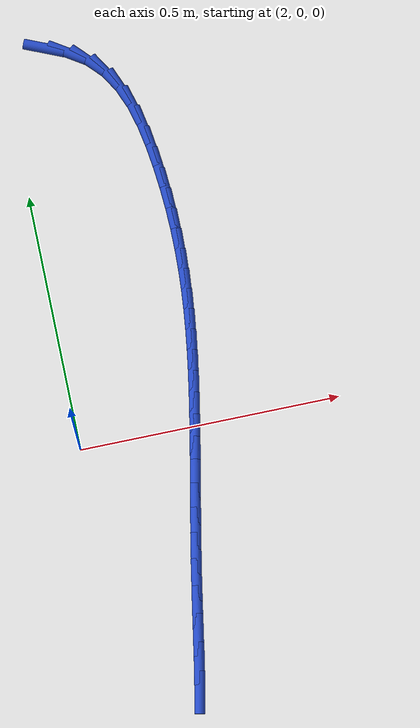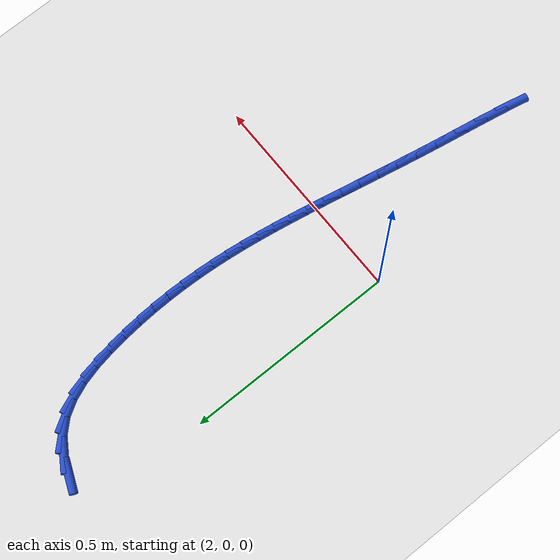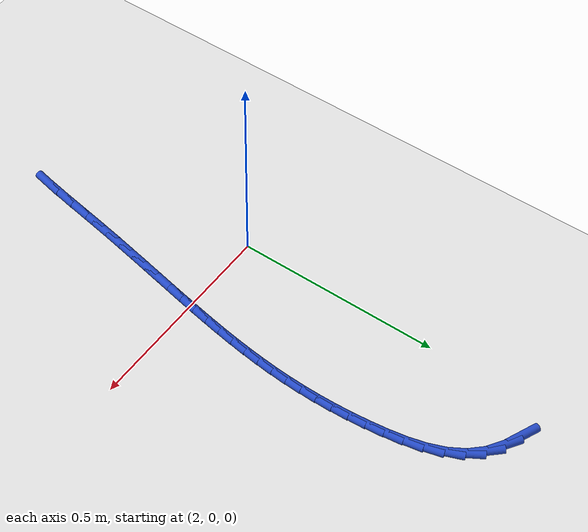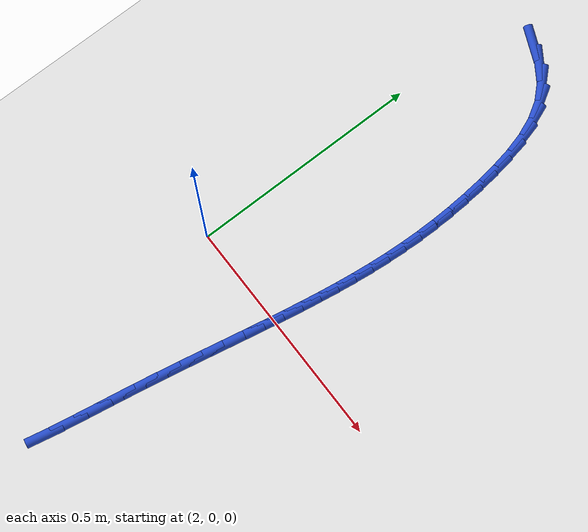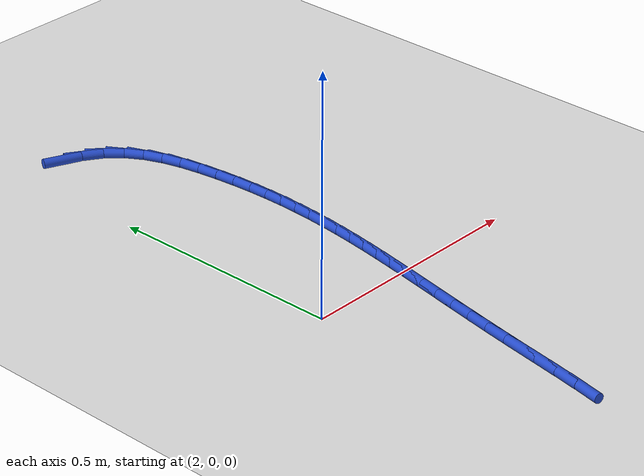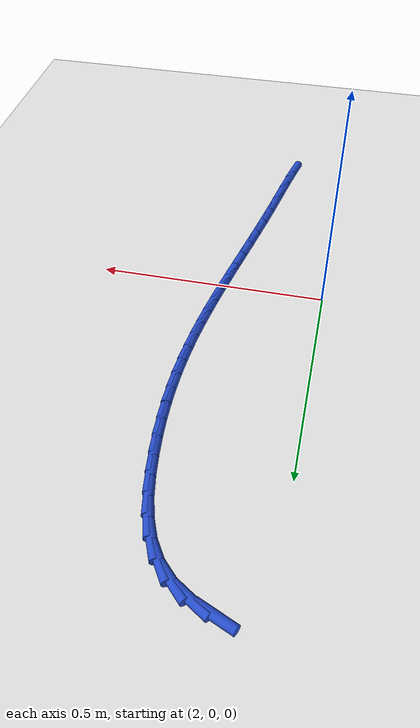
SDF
<sdf version="1.6">
 <world name="default">
  <model name="ground_plane">
   <static>1</static>
   <link name="link">
    <collision name="collision">
     <geometry><plane><normal>0 0 1</normal><size>100 100</size></plane></geometry>
     <surface><friction><ode><mu>100</mu><mu2>50</mu2></ode></friction></surface>
    </collision>
    <visual name="visual">
     <cast_shadows>0</cast_shadows>
     <geometry><plane><normal>0 0 1</normal><size>100 100</size></plane></geometry>
     <material>
      <script><uri>file://media/materials/scripts/gazebo.material</uri><name>Gazebo/WhiteGlow</name></script>
     </material>
    </visual>
   </link>
  </model>
  <model name="line">
   <link name="link_81">
    <pose>2.0859889383725916 0.7826490027034786 0.01 0 1.57 -0.40708424234307306</pose>
    <collision name="collision">
     <geometry><cylinder><radius>0.01</radius><length>0.08</length></cylinder></geometry>
    </collision>
    <visual name="visual">
     <material>
      <script><name>Gazebo/Blue</name><uri>file://media/materials/scripts/gazebo.material</uri></script>
     </material>
     <geometry><cylinder><radius>0.01</radius><length>0.08</length></cylinder></geometry>
    </visual>
   </link>
   <link name="link_82">
    <pose>2.1278544804068167 0.7645978777397595 0.01 0 1.57 -0.5768777004514546</pose>
    <collision name="collision">
     <geometry><cylinder><radius>0.01</radius><length>0.08</length></cylinder></geometry>
    </collision>
    <visual name="visual">
     <material>
      <script><name>Gazebo/Blue</name><uri>file://media/materials/scripts/gazebo.material</uri></script>
     </material>
     <geometry><cylinder><radius>0.01</radius><length>0.08</length></cylinder></geometry>
    </visual>
   </link>
   <link name="link_83">
    <pose>2.1639312271323092 0.7411221970904887 0.01 0 1.57 -0.8098221811694225</pose>
    <collision name="collision">
     <geometry><cylinder><radius>0.01</radius><length>0.08</length></cylinder></geometry>
    </collision>
    <visual name="visual">
     <material>
      <script><name>Gazebo/Blue</name><uri>file://media/materials/scripts/gazebo.material</uri></script>
     </material>
     <geometry><cylinder><radius>0.01</radius><length>0.08</length></cylinder></geometry>
    </visual>
   </link>
   <link name="link_84">
    <pose>2.1925728538445797 0.7110461639763306 0.01 0 1.57 -1.0259885748505464</pose>
    <collision name="collision">
     <geometry><cylinder><radius>0.01</radius><length>0.08</length></cylinder></geometry>
    </collision>
    <visual name="visual">
     <material>
      <script><name>Gazebo/Blue</name><uri>file://media/materials/scripts/gazebo.material</uri></script>
     </material>
     <geometry><cylinder><radius>0.01</radius><length>0.08</length></cylinder></geometry>
    </visual>
   </link>
   <link name="link_85">
    <pose>2.2142740364322346 0.6752346752491429 0.01 0 1.57 -1.1923110346708692</pose>
    <collision name="collision">
     <geometry><cylinder><radius>0.01</radius><length>0.08</length></cylinder></geometry>
    </collision>
    <visual name="visual">
     <material>
      <script><name>Gazebo/Blue</name><uri>file://media/materials/scripts/gazebo.material</uri></script>
     </material>
     <geometry><cylinder><radius>0.01</radius><length>0.08</length></cylinder></geometry>
    </visual>
   </link>
   <link name="link_86">
    <pose>2.2301981136859874 0.6351899634673396 0.01 0 1.57 -1.312296114951965</pose>
    <collision name="collision">
     <geometry><cylinder><radius>0.01</radius><length>0.08</length></cylinder></geometry>
    </collision>
    <visual name="visual">
     <material>
      <script><name>Gazebo/Blue</name><uri>file://media/materials/scripts/gazebo.material</uri></script>
     </material>
     <geometry><cylinder><radius>0.01</radius><length>0.08</length></cylinder></geometry>
    </visual>
   </link>
   <link name="link_87">
    <pose>2.2415086483218363 0.5924144746236057 0.01 0 1.57 -1.3940273540027899</pose>
    <collision name="collision">
     <geometry><cylinder><radius>0.01</radius><length>0.08</length></cylinder></geometry>
    </collision>
    <visual name="visual">
     <material>
      <script><name>Gazebo/Blue</name><uri>file://media/materials/scripts/gazebo.material</uri></script>
     </material>
     <geometry><cylinder><radius>0.01</radius><length>0.08</length></cylinder></geometry>
    </visual>
   </link>
   <link name="link_88">
    <pose>2.2493692030557804 0.5484106547106272 0.01 0 1.57 -1.4443224692131036</pose>
    <collision name="collision">
     <geometry><cylinder><radius>0.01</radius><length>0.08</length></cylinder></geometry>
    </collision>
    <visual name="visual">
     <material>
      <script><name>Gazebo/Blue</name><uri>file://media/materials/scripts/gazebo.material</uri></script>
     </material>
     <geometry><cylinder><radius>0.01</radius><length>0.08</length></cylinder></geometry>
    </visual>
   </link>
   <link name="link_89">
    <pose>2.2549318003560996 0.5046632223556308 0.01 0 1.57 -1.478076930266304</pose>
    <collision name="collision">
     <geometry><cylinder><radius>0.01</radius><length>0.08</length></cylinder></geometry>
    </collision>
    <visual name="visual">
     <material>
      <script><name>Gazebo/Blue</name><uri>file://media/materials/scripts/gazebo.material</uri></script>
     </material>
     <geometry><cylinder><radius>0.01</radius><length>0.08</length></cylinder></geometry>
    </visual>
   </link>
   <link name="link_90">
    <pose>2.2589016267244055 0.4619704963202419 0.01 0 1.57 -1.5108912352390813</pose>
    <collision name="collision">
     <geometry><cylinder><radius>0.01</radius><length>0.08</length></cylinder></geometry>
    </collision>
    <visual name="visual">
     <material>
      <script><name>Gazebo/Blue</name><uri>file://media/materials/scripts/gazebo.material</uri></script>
     </material>
     <geometry><cylinder><radius>0.01</radius><length>0.08</length></cylinder></geometry>
    </visual>
   </link>
   <link name="link_91">
    <pose>2.261404447032583 0.42024072617194175 0.01 0 1.57 -1.543359001978309</pose>
    <collision name="collision">
     <geometry><cylinder><radius>0.01</radius><length>0.08</length></cylinder></geometry>
    </collision>
    <visual name="visual">
     <material>
      <script><name>Gazebo/Blue</name><uri>file://media/materials/scripts/gazebo.material</uri></script>
     </material>
     <geometry><cylinder><radius>0.01</radius><length>0.08</length></cylinder></geometry>
    </visual>
   </link>
   <link name="link_92">
    <pose>2.2625274062757694 0.37932283617723606 0.01 0 1.57 1.5665795332024937</pose>
    <collision name="collision">
     <geometry><cylinder><radius>0.01</radius><length>0.08</length></cylinder></geometry>
    </collision>
    <visual name="visual">
     <material>
      <script><name>Gazebo/Blue</name><uri>file://media/materials/scripts/gazebo.material</uri></script>
     </material>
     <geometry><cylinder><radius>0.01</radius><length>0.08</length></cylinder></geometry>
    </visual>
   </link>
   <link name="link_93">
    <pose>2.2623576494491 0.33906575060263044 0.01 0 1.57 1.536208381370331</pose>
    <collision name="collision">
     <geometry><cylinder><radius>0.01</radius><length>0.08</length></cylinder></geometry>
    </collision>
    <visual name="visual">
     <material>
      <script><name>Gazebo/Blue</name><uri>file://media/materials/scripts/gazebo.material</uri></script>
     </material>
     <geometry><cylinder><radius>0.01</radius><length>0.08</length></cylinder></geometry>
    </visual>
   </link>
   <link name="link_94">
    <pose>2.2609823215477127 0.29931839371462915 0.01 0 1.57 1.5075693152358414</pose>
    <collision name="collision">
     <geometry><cylinder><radius>0.01</radius><length>0.08</length></cylinder></geometry>
    </collision>
    <visual name="visual">
     <material>
      <script><name>Gazebo/Blue</name><uri>file://media/materials/scripts/gazebo.material</uri></script>
     </material>
     <geometry><cylinder><radius>0.01</radius><length>0.08</length></cylinder></geometry>
    </visual>
   </link>
   <link name="link_95">
    <pose>2.258488567566743 0.2599296897797379 0.01 0 1.57 1.4810702131340947</pose>
    <collision name="collision">
     <geometry><cylinder><radius>0.01</radius><length>0.08</length></cylinder></geometry>
    </collision>
    <visual name="visual">
     <material>
      <script><name>Gazebo/Blue</name><uri>file://media/materials/scripts/gazebo.material</uri></script>
     </material>
     <geometry><cylinder><radius>0.01</radius><length>0.08</length></cylinder></geometry>
    </visual>
   </link>
   <link name="link_96">
    <pose>2.254963532501328 0.22074856306446175 0.01 0 1.57 1.4570601936032441</pose>
    <collision name="collision">
     <geometry><cylinder><radius>0.01</radius><length>0.08</length></cylinder></geometry>
    </collision>
    <visual name="visual">
     <material>
      <script><name>Gazebo/Blue</name><uri>file://media/materials/scripts/gazebo.material</uri></script>
     </material>
     <geometry><cylinder><radius>0.01</radius><length>0.08</length></cylinder></geometry>
    </visual>
   </link>
   <link name="link_97">
    <pose>2.2504943613466044 0.18162393783530592 0.01 0 1.57 1.4358171203485854</pose>
    <collision name="collision">
     <geometry><cylinder><radius>0.01</radius><length>0.08</length></cylinder></geometry>
    </collision>
    <visual name="visual">
     <material>
      <script><name>Gazebo/Blue</name><uri>file://media/materials/scripts/gazebo.material</uri></script>
     </material>
     <geometry><cylinder><radius>0.01</radius><length>0.08</length></cylinder></geometry>
    </visual>
   </link>
   <link name="link_98">
    <pose>2.2451681990977073 0.1424047383587764 0.01 0 1.57 1.4175407754076912</pose>
    <collision name="collision">
     <geometry><cylinder><radius>0.01</radius><length>0.08</length></cylinder></geometry>
    </collision>
    <visual name="visual">
     <material>
      <script><name>Gazebo/Blue</name><uri>file://media/materials/scripts/gazebo.material</uri></script>
     </material>
     <geometry><cylinder><radius>0.01</radius><length>0.08</length></cylinder></geometry>
    </visual>
   </link>
   <link name="link_99">
    <pose>2.239072190749774 0.1029398889013767 0.01 0 1.57 1.4023515133093492</pose>
    <collision name="collision">
     <geometry><cylinder><radius>0.01</radius><length>0.08</length></cylinder></geometry>
    </collision>
    <visual name="visual">
     <material>
      <script><name>Gazebo/Blue</name><uri>file://media/materials/scripts/gazebo.material</uri></script>
     </material>
     <geometry><cylinder><radius>0.01</radius><length>0.08</length></cylinder></geometry>
    </visual>
   </link>
   <link name="link_100">
    <pose>2.2322934812979414 0.06307831372961281 0.01 0 1.57 1.3902935797544849</pose>
    <collision name="collision">
     <geometry><cylinder><radius>0.01</radius><length>0.08</length></cylinder></geometry>
    </collision>
    <visual name="visual">
     <material>
      <script><name>Gazebo/Blue</name><uri>file://media/materials/scripts/gazebo.material</uri></script>
     </material>
     <geometry><cylinder><radius>0.01</radius><length>0.08</length></cylinder></geometry>
    </visual>
   </link>
   <link name="link_101">
    <pose>2.2249192157373456 0.022668937109989948 0.01 0 1.57 1.3813419321078888</pose>
    <collision name="collision">
     <geometry><cylinder><radius>0.01</radius><length>0.08</length></cylinder></geometry>
    </collision>
    <visual name="visual">
     <material>
      <script><name>Gazebo/Blue</name><uri>file://media/materials/scripts/gazebo.material</uri></script>
     </material>
     <geometry><cylinder><radius>0.01</radius><length>0.08</length></cylinder></geometry>
    </visual>
   </link>
   <link name="link_102">
    <pose>2.2170365390631233 -0.018439316690986723 0.01 0 1.57 1.3754113229363096</pose>
    <collision name="collision">
     <geometry><cylinder><radius>0.01</radius><length>0.08</length></cylinder></geometry>
    </collision>
    <visual name="visual">
     <material>
      <script><name>Gazebo/Blue</name><uri>file://media/materials/scripts/gazebo.material</uri></script>
     </material>
     <geometry><cylinder><radius>0.01</radius><length>0.08</length></cylinder></geometry>
    </visual>
   </link>
   <link name="link_103">
    <pose>2.2087325962704103 -0.060397523406812065 0.01 0 1.57 1.3723665291620926</pose>
    <collision name="collision">
     <geometry><cylinder><radius>0.01</radius><length>0.08</length></cylinder></geometry>
    </collision>
    <visual name="visual">
     <material>
      <script><name>Gazebo/Blue</name><uri>file://media/materials/scripts/gazebo.material</uri></script>
     </material>
     <geometry><cylinder><radius>0.01</radius><length>0.08</length></cylinder></geometry>
    </visual>
   </link>
   <link name="link_104">
    <pose>2.200094532354344 -0.10335675877098094 0.01 0 1.57 1.3720328367623122</pose>
    <collision name="collision">
     <geometry><cylinder><radius>0.01</radius><length>0.08</length></cylinder></geometry>
    </collision>
    <visual name="visual">
     <material>
      <script><name>Gazebo/Blue</name><uri>file://media/materials/scripts/gazebo.material</uri></script>
     </material>
     <geometry><cylinder><radius>0.01</radius><length>0.08</length></cylinder></geometry>
    </visual>
   </link>
   <link name="link_105">
    <pose>2.191209492310061 -0.1474680985169871 0.01 0 1.57 1.3742061454416314</pose>
    <collision name="collision">
     <geometry><cylinder><radius>0.01</radius><length>0.08</length></cylinder></geometry>
    </collision>
    <visual name="visual">
     <material>
      <script><name>Gazebo/Blue</name><uri>file://media/materials/scripts/gazebo.material</uri></script>
     </material>
     <geometry><cylinder><radius>0.01</radius><length>0.08</length></cylinder></geometry>
    </visual>
   </link>
   <link name="link_106">
    <pose>2.1821646211326966 -0.1928826183783274 0.01 0 1.57 1.378662287350708</pose>
    <collision name="collision">
     <geometry><cylinder><radius>0.01</radius><length>0.08</length></cylinder></geometry>
    </collision>
    <visual name="visual">
     <material>
      <script><name>Gazebo/Blue</name><uri>file://media/materials/scripts/gazebo.material</uri></script>
     </material>
     <geometry><cylinder><radius>0.01</radius><length>0.08</length></cylinder></geometry>
    </visual>
   </link>
   <link name="link_107">
    <pose>2.173047063817388 -0.23975139408849563 0.01 0 1.57 1.3851653342557784</pose>
    <collision name="collision">
     <geometry><cylinder><radius>0.01</radius><length>0.08</length></cylinder></geometry>
    </collision>
    <visual name="visual">
     <material>
      <script><name>Gazebo/Blue</name><uri>file://media/materials/scripts/gazebo.material</uri></script>
     </material>
     <geometry><cylinder><radius>0.01</radius><length>0.08</length></cylinder></geometry>
    </visual>
   </link>
   <link name="link_108">
    <pose>2.1639439653592722 -0.2882255013809866 0.01 0 1.57 1.3933912328696647</pose>
    <collision name="collision">
     <geometry><cylinder><radius>0.01</radius><length>0.08</length></cylinder></geometry>
    </collision>
    <visual name="visual">
     <material>
      <script><name>Gazebo/Blue</name><uri>file://media/materials/scripts/gazebo.material</uri></script>
     </material>
     <geometry><cylinder><radius>0.01</radius><length>0.08</length></cylinder></geometry>
    </visual>
   </link>
   <link name="link_109">
    <pose>2.154939403944548 -0.338448958112209 0.01 0 1.57 1.3989050438191457</pose>
    <collision name="collision">
     <geometry><cylinder><radius>0.01</radius><length>0.08</length></cylinder></geometry>
    </collision>
    <visual name="visual">
     <material>
      <script><name>Gazebo/Blue</name><uri>file://media/materials/scripts/gazebo.material</uri></script>
     </material>
     <geometry><cylinder><radius>0.01</radius><length>0.08</length></cylinder></geometry>
    </visual>
   </link>
   <link name="link_110">
    <pose>2.1459561410932557 -0.390194532013419 0.01 0 1.57 1.3958747920796888</pose>
    <collision name="collision">
     <geometry><cylinder><radius>0.01</radius><length>0.08</length></cylinder></geometry>
    </collision>
    <visual name="visual">
     <material>
      <script><name>Gazebo/Blue</name><uri>file://media/materials/scripts/gazebo.material</uri></script>
     </material>
     <geometry><cylinder><radius>0.01</radius><length>0.08</length></cylinder></geometry>
    </visual>
   </link>
   <link name="link_111">
    <pose>2.136679139536648 -0.44268772665402134 0.01 0 1.57 1.3840543205747167</pose>
    <collision name="collision">
     <geometry><cylinder><radius>0.01</radius><length>0.08</length></cylinder></geometry>
    </collision>
    <visual name="visual">
     <material>
      <script><name>Gazebo/Blue</name><uri>file://media/materials/scripts/gazebo.material</uri></script>
     </material>
     <geometry><cylinder><radius>0.01</radius><length>0.08</length></cylinder></geometry>
    </visual>
   </link>
   <link name="link_112">
    <pose>2.126774272995995 -0.4951101146351284 0.01 0 1.57 1.3629698799067211</pose>
    <collision name="collision">
     <geometry><cylinder><radius>0.01</radius><length>0.08</length></cylinder></geometry>
    </collision>
    <visual name="visual">
     <material>
      <script><name>Gazebo/Blue</name><uri>file://media/materials/scripts/gazebo.material</uri></script>
     </material>
     <geometry><cylinder><radius>0.01</radius><length>0.08</length></cylinder></geometry>
    </visual>
   </link>
  </model>
 </world>
</sdf>
